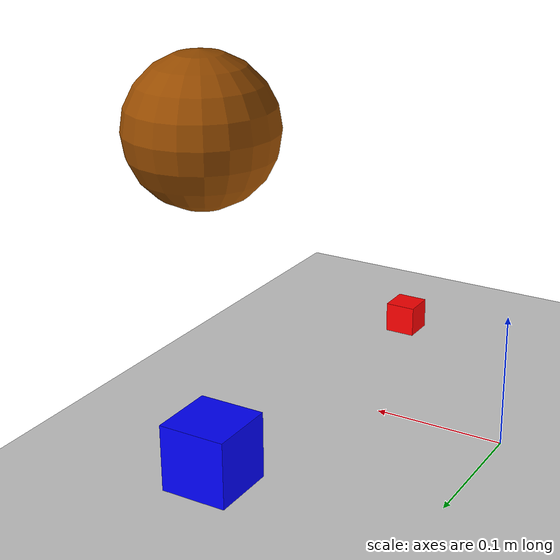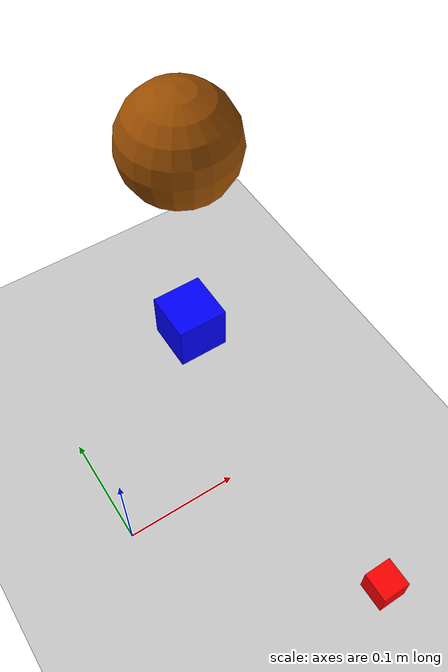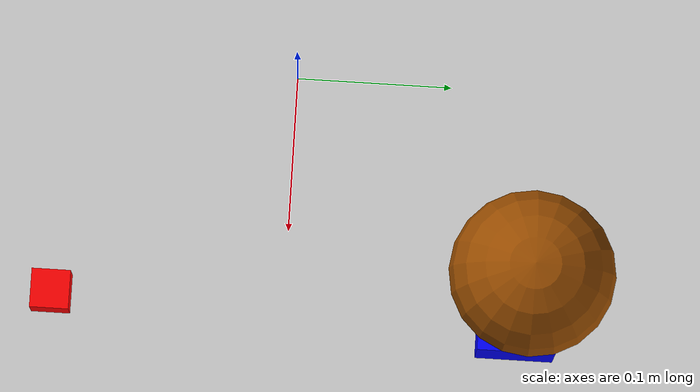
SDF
<?xml version="1.0" ?>
<sdf version="1.5">
  <world name="default">
    <!-- A global light source -->
    <include>
      <uri>model://sun</uri>
    </include>

    <model name='ground_plane'>
      <static>1</static>
      <link name='link'>
        <collision name='collision'>
          <geometry>
            <plane>
              <normal>0 0 1</normal>
              <size>100 100</size>
            </plane>
          </geometry>
          <surface>
            <friction>
              <ode>
                <mu>100</mu>
                <mu2>50</mu2>
              </ode>
            </friction>
            <bounce/>
            <contact>
              <ode/>
            </contact>
          </surface>
          <max_contacts>10</max_contacts>
        </collision>
        <visual name='visual'>
          <cast_shadows>0</cast_shadows>
          <geometry>
            <plane>
              <normal>0 0 1</normal>
              <size>100 100</size>
            </plane>
          </geometry>
          <material>
            <script>
              <uri>file://media/materials/scripts/gazebo.material</uri>
              <name>Gazebo/Grey</name>
            </script>
          </material>
        </visual>
        <velocity_decay>
          <linear>0</linear>
          <angular>0</angular>
        </velocity_decay>
        <self_collide>0</self_collide>
        <kinematic>0</kinematic>
        <gravity>1</gravity>
      </link>
    </model>

    <model name="cube_base">
      <pose>0.15 0.15 0 0 0 0</pose>
      <include>
        <uri>model://wood_cube_2_5cm_blue</uri>
      </include>
    </model>

    <model name="cube_pick">
      <pose>0.15 -0.15 0 0 0 0</pose>
      <include>
        <uri>model://wood_cube_2_5cm_red</uri>
      </include>
    </model>

    <model name="obstacle_sphere">
      <pose>0.15 0.15 0.25 0 0 0 0</pose>
      <link name="obstacle_sphere">
        <kinematic>true</kinematic>
        <collision name="collision">
          <geometry>
            <sphere>
              <radius>0.05</radius>
            </sphere>
          </geometry>
          <surface>
            <friction>
              <ode>
                <mu>0.0</mu>
                <mu2>0.0</mu2>
              </ode>
            </friction>
          </surface>
        </collision>
        <visual name="visual">
          <geometry>
            <sphere>
              <radius>0.05</radius>
            </sphere>
          </geometry>
          <material>
            <ambient>0.6 0.3 0.0 1</ambient>
            <diffuse>0.6 0.3 0.0 1</diffuse>
            <specular>0 0 0 0</specular>
            <emissive>0 0 0 1</emissive>
          </material>
        </visual>
      </link>

    </model>

  </world>
</sdf>

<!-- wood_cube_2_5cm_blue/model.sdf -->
<sdf version="1.5">
  <model name="wood_cube_2_5cm_blue">
    <link name="link">
      <pose>0 0 0.025 0 0 0</pose>
      <inertial>
        <mass>0.0073</mass>
        <inertia>
          <ixx>7.604166666666669e-07</ixx>
          <ixy>0</ixy>
          <ixz>0</ixz>
          <iyy>7.604166666666669e-07</iyy>
          <iyz>0</iyz>
          <izz>7.604166666666669e-07</izz>
        </inertia>
      </inertial>

      <collision name="collision">
        <geometry>
          <box>
            <size>0.05 0.05 0.05</size>
          </box>
        </geometry>
        <surface>
          <contact>
            <!-- Red Pine coefficients for longitudinal axis of the wood
                 according to:
                 http://www.fpl.fs.fed.us/documnts/fplgtr/fplgtr113/ch04.pdf -->
            <poissons_ratio>0.347</poissons_ratio>
            <elastic_modulus>8.8e+09</elastic_modulus>
            <ode>
              <kp>100000</kp>
              <kd>100</kd>
              <max_vel>100.0</max_vel>
              <min_depth>0.001</min_depth>
            </ode>
          </contact>
          <friction>
            <torsional>
              <coefficient>1.0</coefficient>
              <use_patch_radius>0</use_patch_radius>
              <surface_radius>0.01</surface_radius>
            </torsional>
          </friction>
        </surface>
      </collision>

      <visual name="visual">
        <geometry>
          <box>
            <size>0.05 0.05 0.05</size>
          </box>
        </geometry>
        <material>
          <ambient>0.0 0.0 1.0 1</ambient>
          <diffuse>0.0 0.0 1.0 1</diffuse>
          <specular>0 0 0 0</specular>
          <emissive>0 0 0 1</emissive>
        </material>
      </visual>

    </link>
  </model>
</sdf>

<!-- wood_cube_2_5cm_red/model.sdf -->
<sdf version="1.5">
  <model name="wood_cube_2_5cm_red">
    <link name="link">
      <pose>0 0 0.0125 0 0 0</pose>
      <inertial>
        <mass>0.0073</mass>
        <inertia>
          <ixx>7.604166666666669e-07</ixx>
          <ixy>0</ixy>
          <ixz>0</ixz>
          <iyy>7.604166666666669e-07</iyy>
          <iyz>0</iyz>
          <izz>7.604166666666669e-07</izz>
        </inertia>
      </inertial>

      <collision name="collision">
        <geometry>
          <box>
            <size>0.025 0.025 0.025</size>
          </box>
        </geometry>
        <surface>
          <contact>
            <!-- Red Pine coefficients for longitudinal axis of the wood
                 according to:
                 http://www.fpl.fs.fed.us/documnts/fplgtr/fplgtr113/ch04.pdf -->
            <poissons_ratio>0.347</poissons_ratio>
            <elastic_modulus>8.8e+09</elastic_modulus>
            <ode>
              <kp>100000</kp>
              <kd>100</kd>
              <max_vel>100.0</max_vel>
              <min_depth>0.001</min_depth>
            </ode>
          </contact>
          <friction>
            <torsional>
              <coefficient>1.0</coefficient>
              <use_patch_radius>0</use_patch_radius>
              <surface_radius>0.01</surface_radius>
            </torsional>
          </friction>
        </surface>
      </collision>

      <visual name="visual">
        <geometry>
          <box>
            <size>0.025 0.025 0.025</size>
          </box>
        </geometry>
        <material>
          <ambient>1.0 0.0 0.0 1</ambient>
          <diffuse>1.0 0.0 0.0 1</diffuse>
          <specular>0 0 0 0</specular>
          <emissive>0 0 0 1</emissive>
        </material>
      </visual>

    </link>
  </model>
</sdf>
